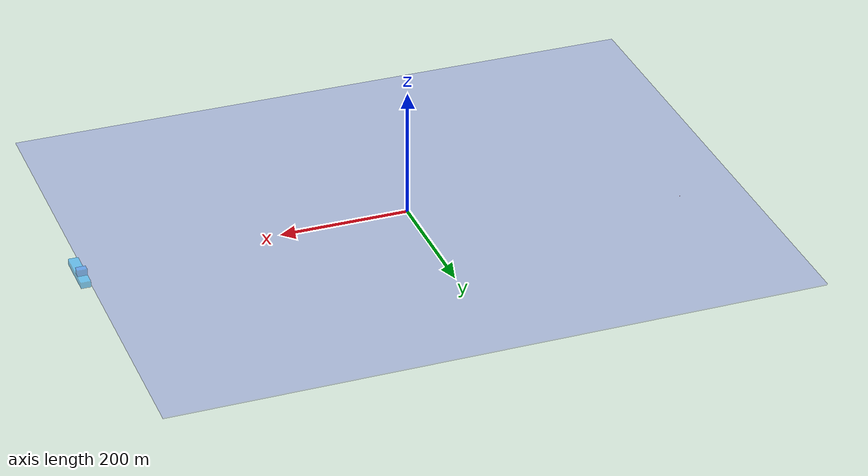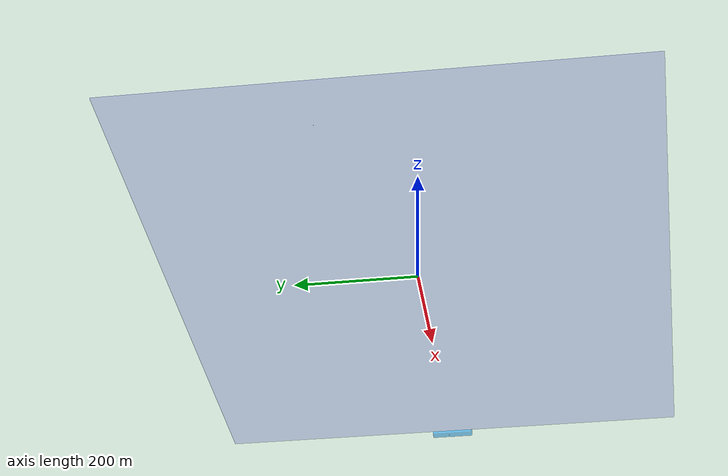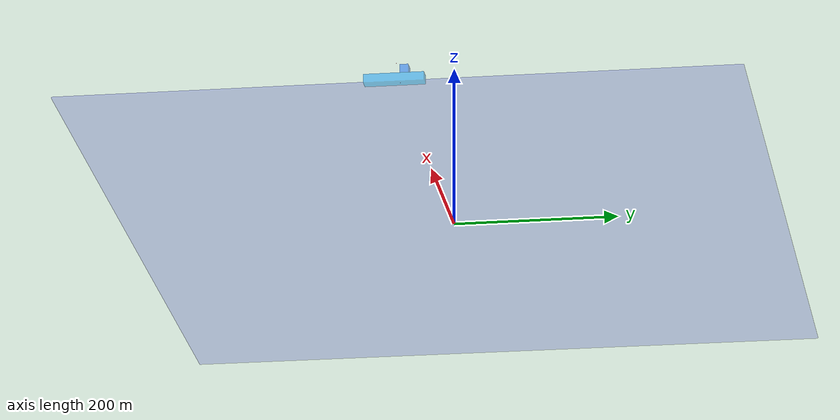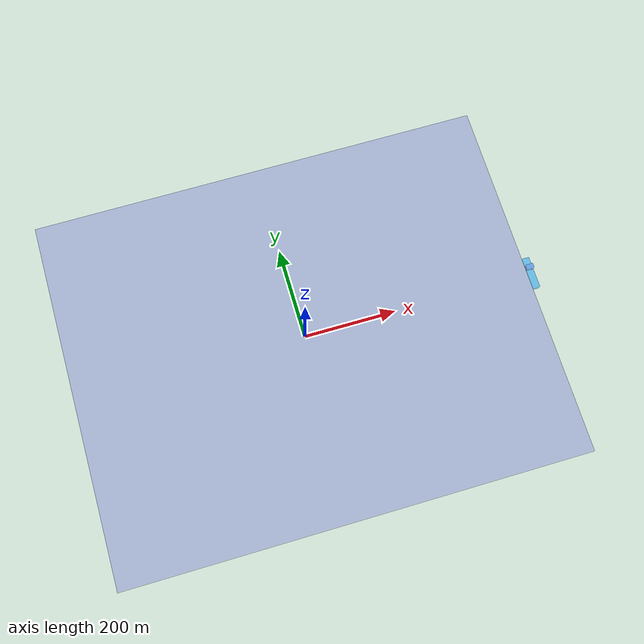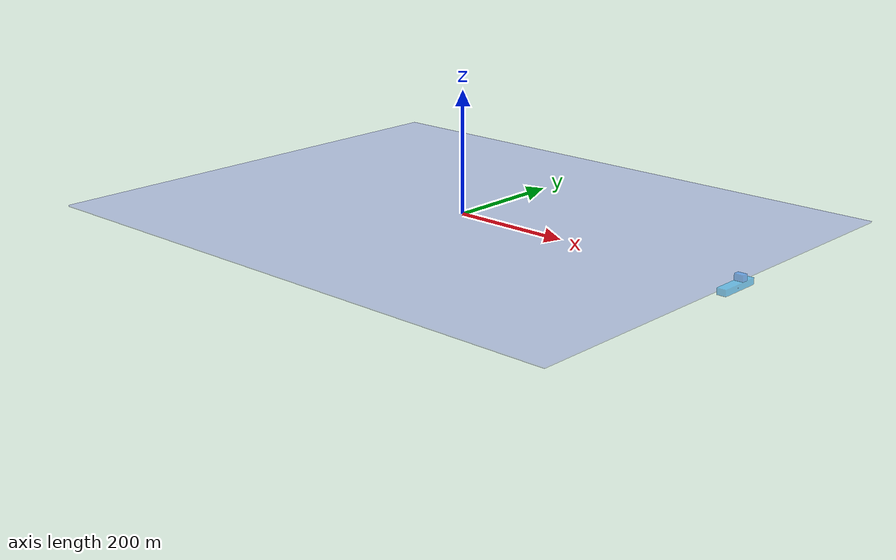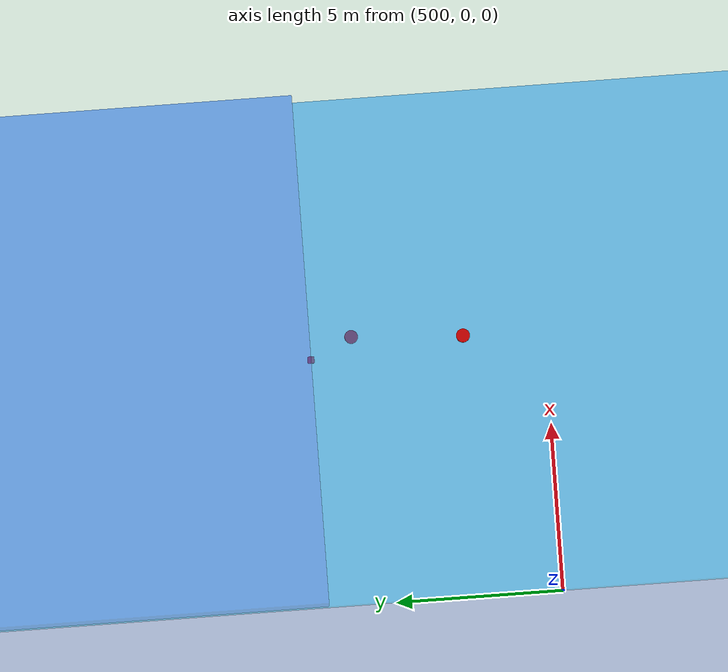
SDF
<sdf version='1.6'>

	<model name='ice'>

	<plugin name="trajectory_forcer" filename="libtrajectory_forcer.so">
		<robotNamespace>ice</robotNamespace>
		<kl>100</kl>
		<ka>100</ka>
		<linkName>sheet</linkName>
		<translationVector>1 1 0</translationVector>
		<linearVelocity>0.1</linearVelocity>
		<angularVelocity>0.00000096962</angularVelocity>
		<forcedObject>ice</forcedObject>
	</plugin>

    <pose>0 0 0 0 0 0</pose>
	<link name='sheet'>
      <pose frame=''>0 0 0 0 -0 0</pose>
      <inertial>
        <pose frame=''>0 0 0 0 -0 0</pose>
        <mass>1</mass>
        <inertia>
          <ixx>1</ixx>
          <ixy>0</ixy>
          <ixz>0</ixz>
          <iyy>1</iyy>
          <iyz>0</iyz>
          <izz>1</izz>
        </inertia>
      </inertial>
      <collision name='sheet_collision'>
        <pose frame=''>0 0 0 0 -0 0</pose>
        <geometry>
          <box>
            <size>1000 800 2</size>
          </box>
        </geometry>
        <surface>
          <friction>
            <ode>
              <mu>0</mu>
              <mu2>0</mu2>
            </ode>
          </friction>
        </surface>
      </collision>
      <visual name='sheet_visual'>
        <pose frame=''>0 0 0 0 -0 0</pose>
        <geometry>
          <box>
            <size>1000 800 2</size>
          </box>
        </geometry>
        <material>
	      <ambient>0 0 0.8 0.2</ambient>
          <diffuse>0 0 0.8 0.2</diffuse>
          <specular>0 0 0.8 0.2</specular>
          <emissive>0 0 0.8 0.2</emissive>
        </material>
      </visual>
      <gravity>false</gravity>
      <kinematic>false</kinematic>
      <self_collide>false</self_collide>
    </link>

    <!--========GPS Unit #1=========-->

    <link name="gps1">
        <pose>-400 100 1.5 0 0 0</pose>
        <visual name="visual">
          <pose>0.0 0.0 0.0 0.0 0.0 0.0</pose>
          <geometry>
            <cylinder>
              <radius>0.2</radius>
              <length>0.5</length>
            </cylinder>
          </geometry>
          <cast_shadows>true</cast_shadows>
          <laser_retro>100.0</laser_retro>
          <material>
	        <ambient>.8 0 0 1</ambient>
            <diffuse>.8 0 0 1</diffuse>
            <specular>.8 0 0 1</specular>
            <emissive>.8 0 0 1</emissive>
          </material>
        </visual>
        <inertial>
        	<mass>0.00001</mass>
        </inertial>

    	<collision name="collision">
          <pose>0.0 0.0 0.0 0.0 0.0 0.0</pose>
          <max_contacts>250</max_contacts>
          <geometry>
            <cylinder>
              <radius>0.2</radius>
              <length>0.5</length>
            </cylinder>
          </geometry>
        </collision>

        <sensor type="sonar" name="gps">
          <plugin filename="libgps_plugin.so" name="gps_plugin">
            <robotNamespace>ice</robotNamespace>
          	<topicName>gps_1</topicName>
            <updateRate>1</updateRate>
          	<horizStdDev>0</horizStdDev>
            <vertStdDev>0</vertStdDev>
          	<alwaysOn>true</alwaysOn>
          </plugin>
          </sensor>

        <gravity>false</gravity>
        <self_collide>true</self_collide>
        <kinematic>false</kinematic>
      </link>

      <joint name="ice_gps1" type="fixed">
    	<pose>-400 100 1.5 0 0 0</pose>
    	<parent>sheet</parent>
    	<child>gps1</child>
    	<frame name="ice_gps1" />
    </joint>

      <!--========GPS Unit #2=========-->
    <link name="gps2">
        <pose>3 -2 1.5 0 0 0</pose>
        <visual name="visual">
          <pose>0.0 0.0 0.0 0.0 0.0 0.0</pose>
          <geometry>
            <cylinder>
              <radius>0.2</radius>
              <length>0.5</length>
            </cylinder>
          </geometry>
          <cast_shadows>true</cast_shadows>
          <laser_retro>100.0</laser_retro>
          <material>
	        <ambient>.8 0 0 1</ambient>
            <diffuse>.8 0 0 1</diffuse>
            <specular>.8 0 0 1</specular>
            <emissive>.8 0 0 1</emissive>
          </material>
        </visual>
        <inertial>
        	<mass>0.00001</mass>
        </inertial>

    	<collision name="collision">
          <pose>0.0 0.0 0.0 0.0 0.0 0.0</pose>
          <max_contacts>250</max_contacts>
          <geometry>
            <cylinder>
              <radius>0.2</radius>
              <length>0.5</length>
            </cylinder>
          </geometry>
        </collision>

        <sensor type="sonar" name="gps">
          <plugin filename="libgps_plugin.so" name="gps_plugin">
            <robotNamespace>ice</robotNamespace>
          	<topicName>gps_2</topicName>
            <updateRate>1</updateRate>
          	<horizStdDev>0</horizStdDev>
            <vertStdDev>0</vertStdDev>
          	<alwaysOn>true</alwaysOn>
          </plugin>
          </sensor>

        <gravity>false</gravity>
        <self_collide>false</self_collide>
        <kinematic>false</kinematic>
      </link>

      <joint name="ice_gps2" type="fixed">
      	<pose>3 -2 1.5 0 0 0</pose>
    	<parent>sheet</parent>
    	<child>gps2</child>
    	<frame name="ice_gps2" />
    </joint>

    <!--==============SHIP===========-->

<model name='ship'>
  	<pose>507.5 0 0 0 0 0</pose>
    <link name='hull'>
      <pose frame=''>0 0 0 0 -0 0</pose>
      <frame name="hull_f" />
      <visual name='hull_visual'>
        <pose frame=''>0 0 0 0 -0 0</pose>
        <geometry>
          <box>
            <size>15 70 10</size>
          </box>
        </geometry>
        <material>
          <ambient>0 0.6 1 0.5</ambient>
          <diffuse>0 0.6 1 0.5</diffuse>
          <specular>0 0.6 1 0.5</specular>
          <emissive>0 0.6 1 0.5</emissive>
        </material>
      </visual>
      <collision name='hull_collision'>
        <pose frame=''>0 0 0 0 0 0</pose>
        <geometry>
          <box>
            <size>15 70 10</size>
          </box>
        </geometry>
      </collision>
      <gravity>0</gravity>
      <gravity>false</gravity>
    </link>

    <link name='bridge'>
      <pose frame=''>0 12 10 0 -0 0</pose>
      <gravity>0</gravity>
      <visual name='visual'>
        <geometry>
          <box>
            <size>15 10 10</size>
          </box>
        </geometry>
        <material>
          <ambient>0 0.4 1 0.5</ambient>
          <diffuse>0 0.4 1 0.5</diffuse>
          <specular>0 0.4 1 0.5</specular>
          <emissive>0 0.4 1 0.5</emissive>
        </material>
        <cast_shadows>1</cast_shadows>
        <transparency>0.5</transparency>
      </visual>
      <collision name='collision'>

        <max_contacts>10</max_contacts>
        <pose frame=''>0 0 0 0 -0 0</pose>
        <geometry>
          <box>
            <size>15 10 10</size>
          </box>
        </geometry>
      </collision>
      <gravity>false</gravity>
    </link>

    <joint name="hull_bridge" type="fixed">
    	<pose frame=''>0 12 10 0 -0 0</pose>
    	<parent>hull</parent>
    	<child>bridge</child>
    	<frame name="hull_f" />
    </joint>

    <link name='GPS'>
      <pose frame=''>0 2.5 19 0 0 0</pose>
        <visual name="visual">
          <pose>0.0 0.0 0.0 0.0 0.0 0.0</pose>
          <geometry>
            <cylinder>
              <radius>0.2</radius>
              <length>0.5</length>
            </cylinder>
          </geometry>
          <cast_shadows>true</cast_shadows>
          <laser_retro>100.0</laser_retro>
          <material>
	        <ambient>.8 0 0 1</ambient>
            <diffuse>.8 0 0 1</diffuse>
            <specular>.8 0 0 1</specular>
            <emissive>.8 0 0 1</emissive>
          </material>
        </visual>

    	<collision name="collision">
          <pose>0.0 0.0 0.0 0.0 0.0 0.0</pose>
          <max_contacts>250</max_contacts>
          <geometry>
            <cylinder>
              <radius>0.2</radius>
              <length>0.5</length>
            </cylinder>
          </geometry>
        </collision>

        <sensor type="sonar" name="gps">
          <plugin filename="libgps_plugin.so" name="gps_plugin">
            <robotNamespace>ship</robotNamespace>
          	<topicName>ship_gps</topicName>
            <updateRate>1</updateRate> <!--Hz-->
          	<horizStdDev>1</horizStdDev>
            <vertStdDev>5</vertStdDev>
          	<alwaysOn>true</alwaysOn>
          </plugin>
        </sensor>

        <gravity>false</gravity>
        <self_collide>true</self_collide>
        <kinematic>false</kinematic>
      </link>

    <joint name="hull_GPS" type="fixed">
    	<pose>0 2.5 19 0 -0 0</pose>
    	<parent>hull</parent>
    	<child>GPS</child>
    	<frame name="hull_GPS" />
    </joint>

    <link name="USBL">
        <pose>0.6 5.75 -5 0.0 0.0 0.0</pose>
        <visual name="visual_box">
          <pose>0.0 0.0 0.0 0.0 0.0 0.0</pose>
          <geometry>
            <cylinder>
              <radius>0.2</radius>
              <length>0.2</length>
            </cylinder>
          </geometry>
          <cast_shadows>true</cast_shadows>
          <laser_retro>100.0</laser_retro>
          <material>
	        <ambient>.8 0 0 1</ambient>
            <diffuse>.8 0 0 1</diffuse>
            <specular>.8 0 0 1</specular>
            <emissive>.8 0 0 1</emissive>
          </material>
        </visual>

    	<collision name="collision_box">
          <pose>0.0 0.0 0.0 0.0 0.0 0.0</pose>
          <max_contacts>250</max_contacts>
          <geometry>
            <cylinder>
              <radius>0.2</radius>
              <length>0.2</length>
            </cylinder>
          </geometry>
        </collision>

        <sensor type="sonar" name="usbl">
          <plugin filename="libusbl_plugin.so" name="usbl_plugin">
            <robotNamespace>ship</robotNamespace>
          	<topicName>usbl</topicName>
            <beaconLinkName>beacon</beaconLinkName>
            <updateRate>0.5</updateRate> <!--Hz-->
          	<posAccuracy>0.002</posAccuracy>	<!--iXblue Posidonia is 0.2% slant range-->
            <alwaysOn>true</alwaysOn>
          </plugin>
          </sensor>

        <gravity>false</gravity>
        <self_collide>true</self_collide>
        <kinematic>false</kinematic>
      </link>

    <joint name="hull_USBL" type="fixed">
    	<pose>0 2.5 -5 0 -0 0</pose>
    	<parent>hull</parent>
    	<child>USBL</child>
    	<frame name="hull_GPS" />
    </joint>

    <link name="IMU">
    	<pose>0 7 -5 0 0 0</pose>
      <collision name="collision">
        <pose>0 0 0 0 0 0</pose>
        <geometry>
          <box>
            <size>0.2 0.2 0.2</size>
          </box>
        </geometry>
      </collision>
      <visual name="visual">
        <pose>0 0 0 0 0 0</pose>
        <geometry>
          <box>
            <size>0.2 0.2 0.2</size>
          </box>
        </geometry>
		<material>
          <script>
            <name>Gazebo/Red</name>
            <uri>__default__</uri>
          </script>
        </material>
      </visual>

        <gravity>false</gravity>
        <self_collide>true</self_collide>
        <kinematic>false</kinematic>
    </link>

    <joint name="hull_IMU" type="fixed">
    	<pose>0 7 -5 0 -0 0</pose>
    	<parent>hull</parent>
    	<child>IMU</child>
    	<frame name="hull_GPS" />
    </joint>

    	<plugin name="imu_plugin" filename="libhector_gazebo_ros_imu.so">
		<robotNamespace>ship</robotNamespace>
		<updateRate>10.0</updateRate>
		<bodyName>IMU</bodyName>
		<topicName>ship_imu</topicName>
		<accelDrift>0.00 0.00 0.00</accelDrift>
		<accelGaussianNoise>0.00 0.00 0.00</accelGaussianNoise>
		<rateDrift>0.00 0.00 0.00</rateDrift>
		<rateGaussianNoise>0.00 0.00 0.00 </rateGaussianNoise>
		<headingDrift>0.00</headingDrift>
		<headingGaussianNoise>0.00</headingGaussianNoise>
		</plugin>

    <static>false</static>

  </model>
      <joint name="ice_ship" type="fixed">
    	<parent>ship::hull</parent>
    	<child>sheet</child>
    	<pose>507.5 0 0 0 0 0</pose>
    </joint>

  </model>
</sdf>
